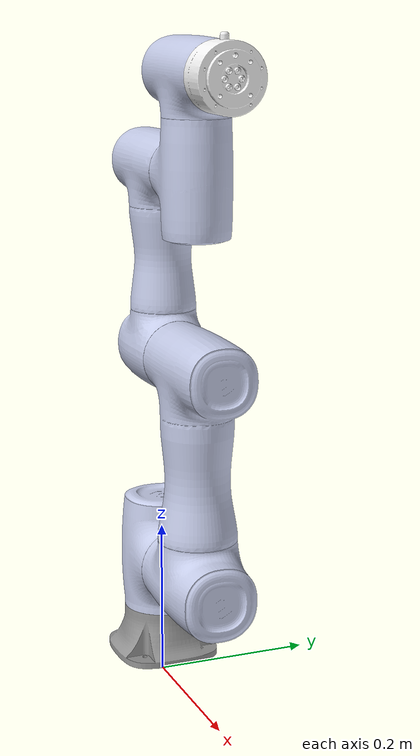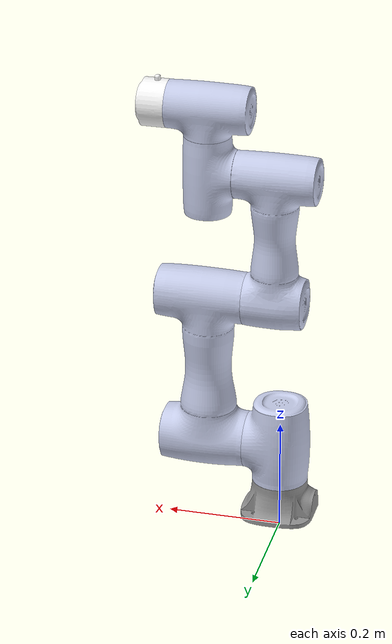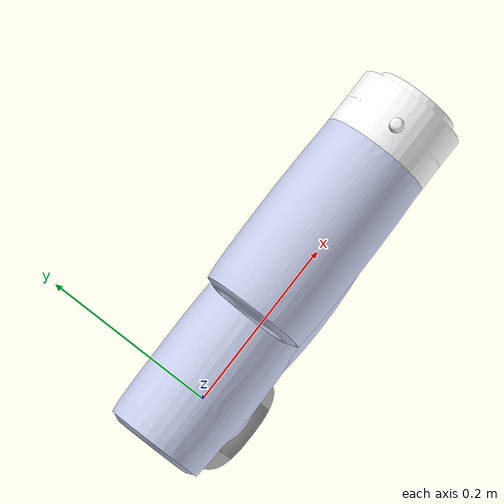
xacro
<?xml version="1.0"?>
<robot name="cr3af_robot" xmlns:xacro="http://ros.org/wiki/xacro">
  <link name="dummy_link" />
  <link
    name="base_link">
    <inertial>
      <origin
        xyz="-0.0015345 -1.0554E-05 0.028348"
        rpy="0 0 0" />
      <mass
        value="0.74" />
      <inertia
        ixx="0.00074849"
        ixy="5.9724E-08"
        ixz="-1.3251E-06"
        iyy="0.00079951"
        iyz="1.6433E-07"
        izz="0.0010879" />
    </inertial>
    <visual>
      <origin
        xyz="0 0 0"
        rpy="0 0 0" />
      <geometry>
        <mesh
          filename="file://$(find cra_description)/meshes/cr3af/base_link.STL" />
      </geometry>
      <material
        name="">
        <color
          rgba="0.59216 0.59216 0.59216 1" />
      </material>
    </visual>
    <collision>
      <origin
        xyz="0 0 0"
        rpy="0 0 0" />
      <geometry>
        <mesh
          filename="file://$(find cra_description)/meshes/cr3af/base_link.STL" />
      </geometry>
    </collision>
  </link>
    <link  name="world"/>
  <joint name="world_joint" type="fixed">
    <origin xyz="0 0 0.03" rpy="0 0 0" />
    <parent link="world" />
    <child  link="dummy_link" />
  </joint>
  <joint name="dummy_joint" type="fixed">
      <parent link="dummy_link" />
      <child  link="base_link" />
    </joint>
  <link
    name="Link1">
    <inertial>
      <origin
        xyz="0.0039443 -3.6376E-05 0.073442"
        rpy="0 0 0" />
      <mass
        value="4.45" />
      <inertia
        ixx="0.0030782"
        ixy="-1.8164E-06"
        ixz="-1.8902E-05"
        iyy="0.0031919"
        iyz="3.5177E-07"
        izz="0.001909" />
    </inertial>
    <visual>
      <origin
        xyz="0 0 0"
        rpy="0 0 0" />
      <geometry>
        <mesh
          filename="file://$(find cra_description)/meshes/cr3af/J1.STL" />
      </geometry>
      <material
        name="">
        <color
          rgba="0.79216 0.81961 0.93333 1" />
      </material>
    </visual>
    <collision>
      <origin
        xyz="0 0 0"
        rpy="0 0 0" />
      <geometry>
        <mesh
          filename="file://$(find cra_description)/meshes/cr3af/J1.STL" />
      </geometry>
    </collision>
  </link>
  <joint
    name="joint1"
    type="revolute">
    <origin
      xyz="0 0 0.065"
      rpy="0 0 0" />
    <parent
      link="base_link" />
    <child
      link="Link1" />
    <axis
      xyz="0 0 1" />
    <limit
      lower="-6.2831"
      upper="6.2831"
      effort="100"
      velocity="3.14" />
  </joint>
  <link
    name="Link2">
    <inertial>
      <origin
        xyz="0.074174 1.4072E-05 0.12923"
        rpy="0 0 0" />
      <mass
        value="8.74" />
      <inertia
        ixx="0.015046"
        ixy="-3.3667E-07"
        ixz="0.00063538"
        iyy="0.017734"
        iyz="1.7848E-06"
        izz="0.0066528" />
    </inertial>
    <visual>
      <origin
        xyz="0 0 0"
        rpy="0 0 0" />
      <geometry>
        <mesh
          filename="file://$(find cra_description)/meshes/cr3af/J2.STL" />
      </geometry>
      <material
        name="">
        <color
          rgba="0.79216 0.81961 0.93333 1" />
      </material>
    </visual>
    <collision>
      <origin
        xyz="0 0 0"
        rpy="0 0 0" />
      <geometry>
        <mesh
          filename="file://$(find cra_description)/meshes/cr3af/J2.STL" />
      </geometry>
    </collision>
  </link>
  <joint
    name="joint2"
    type="revolute">
    <origin
      xyz="0.059 0 0.0698"
      rpy="0 0 0" />
    <parent
      link="Link1" />
    <child
      link="Link2" />
    <axis
      xyz="1 0 0" />
    <limit
      lower="-6.2831"
      upper="6.2831"
      effort="100"
      velocity="3.14" />
  </joint>
  <link
    name="Link3">
    <inertial>
      <origin
        xyz="-0.0626 6.0771E-07 -0.34381"
        rpy="0 0 0" />
      <mass
        value="3.14" />
      <inertia
        ixx="0.003139"
        ixy="2.60E-07"
        ixz="-0.000151"
        iyy="0.023669"
        iyz="3.67E-08"
        izz="0.022579" />
    </inertial>
    <visual>
      <origin
        xyz="0 0 0"
        rpy="0 0 0" />
      <geometry>
        <mesh
          filename="file://$(find cra_description)/meshes/cr3af/J3.STL" />
      </geometry>
      <material
        name="">
        <color
          rgba="0.79216 0.81961 0.93333 1" />
      </material>
    </visual>
    <collision>
      <origin
        xyz="0 0 0"
        rpy="0 0 0" />
      <geometry>
        <mesh
          filename="file://$(find cra_description)/meshes/cr3af/J3.STL" />
      </geometry>
    </collision>
  </link>
  <joint
    name="joint3"
    type="revolute">
    <origin
      xyz="0.0036 0 0.27401"
      rpy="0 0 0" />
    <parent
      link="Link2" />
    <child
      link="Link3" />
    <axis
      xyz="1 0 0" />
    <limit
      lower="-2.7052"
      upper="2.7052"
      effort="100"
      velocity="3.89" />
  </joint>
  <link
    name="Link4">
    <inertial>
      <origin
        xyz="0.046127 2.7026E-08 -0.0034506"
        rpy="0 0 0" />
      <mass
        value="2.1" />
      <inertia
        ixx="0.0016946"
        ixy="-3.1265E-09"
        ixz="-9.3105E-06"
        iyy="0.0017337"
        iyz="5.4022E-09"
        izz="0.0008225" />
    </inertial>
    <visual>
      <origin
        xyz="0 0 0"
        rpy="0 0 0" />
      <geometry>
        <mesh
          filename="file://$(find cra_description)/meshes/cr3af/J4.STL" />
      </geometry>
      <material
        name="">
        <color
          rgba="0.79216 0.81961 0.93333 1" />
      </material>
    </visual>
    <collision>
      <origin
        xyz="0 0 0"
        rpy="0 0 0" />
      <geometry>
        <mesh
          filename="file://$(find cra_description)/meshes/cr3af/J4.STL" />
      </geometry>
    </collision>
  </link>
  <joint
    name="joint4"
    type="revolute">
    <origin
      xyz="0.0167 0 0.22999"
      rpy="0 0 0" />
    <parent
      link="Link3" />
    <child
      link="Link4" />
    <axis
      xyz="1 0 0" />
    <limit
      lower="-6.2831"
      upper="6.2831"
      effort="100"
      velocity="3.89" />
  </joint>
  <link
    name="Link5">
    <inertial>
      <origin
        xyz="-0.0033307 -1.2849E-07 0.046132"
        rpy="0 0 0" />
      <mass
        value="2.1" />
      <inertia
        ixx="0.0008236"
        ixy="-5.4869E-09"
        ixz="-9.0189E-06"
        iyy="0.0017414"
        iyz="3.5935E-09"
        izz="0.0017023" />
    </inertial>
    <visual>
      <origin
        xyz="0 0 0"
        rpy="0 0 0" />
      <geometry>
        <mesh
          filename="file://$(find cra_description)/meshes/cr3af/J5.STL" />
      </geometry>
      <material
        name="">
        <color
          rgba="0.79216 0.81961 0.93333 1" />
      </material>
    </visual>
    <collision>
      <origin
        xyz="0 0 0"
        rpy="0 0 0" />
      <geometry>
        <mesh
          filename="file://$(find cra_description)/meshes/cr3af/J5.STL" />
      </geometry>
    </collision>
  </link>
  <joint
    name="joint5"
    type="revolute">
    <origin
      xyz="0.049 0 0.067"
      rpy="0 0 0" />
    <parent
      link="Link4" />
    <child
      link="Link5" />
    <axis
      xyz="0 0 1" />
    <limit
      lower="-6.2831"
      upper="6.2831"
      effort="100"
      velocity="3.89" />
  </joint>
  <link
    name="Link6">
    <inertial>
      <origin
        xyz="0.022777 -1.019E-08 8.8138E-05"
        rpy="0 0 0" />
      <mass
        value="0.29" />
      <inertia
        ixx="0.00019903"
        ixy="-1.1106E-12"
        ixz="-2.2857E-07"
        iyy="0.0001425"
        iyz="-1.2175E-10"
        izz="0.00014123" />
    </inertial>
    <visual>
      <origin
        xyz="0 0 0"
        rpy="0 0 0" />
      <geometry>
        <mesh
          filename="file://$(find cra_description)/meshes/cr3af/J6.STL" />
      </geometry>
      <material
        name="">
        <color
          rgba="1 1 1 1" />
      </material>
    </visual>
    <collision>
      <origin
        xyz="0 0 0"
        rpy="0 0 0" />
      <geometry>
        <mesh
          filename="file://$(find cra_description)/meshes/cr3af/J6.STL" />
      </geometry>
    </collision>
  </link>
  <joint
    name="joint6"
    type="revolute">
    <origin
      xyz="0.0667 0 0.049"
      rpy="0 0 0" />
    <parent
      link="Link5" />
    <child
      link="Link6" />
    <axis
      xyz="1 0 0" />
    <limit
      lower="-6.2831"
      upper="6.2831"
      effort="100"
      velocity="3.89" />
  </joint>
  <link name="tool0"/>
  <joint name="tool_joint" type="fixed">
    <origin xyz="0 0 0" rpy="4.7124 0 3.14159" />
    <parent link="Link6" />
    <child link="tool0" />
  </joint>
  <gazebo reference="base_link">
        <gravity>false</gravity>
        <selfCollide>true</selfCollide>
    </gazebo>
    <gazebo reference="Link1">
        <gravity>false</gravity>
        <selfCollide>true</selfCollide>
    </gazebo>
    <gazebo reference="Link2">
        <gravity>false</gravity>
        <selfCollide>true</selfCollide>
    </gazebo>
    <gazebo reference="Link3">
        <gravity>false</gravity>
        <selfCollide>true</selfCollide>
    </gazebo>
    <gazebo reference="Link4">
        <gravity>false</gravity>
        <selfCollide>true</selfCollide>
    </gazebo>
    <gazebo reference="Link5">
        <gravity>false</gravity>
        <selfCollide>true</selfCollide>
    </gazebo>
    <gazebo reference="Link6">
        <gravity>false</gravity>
        <selfCollide>true</selfCollide>
    </gazebo>
    <!-- 在运行demo.launch.py时，需要注释这个ros2_control节点，因为它使用了xxx.ros2_control.xacro来生成了ros2_control节点-->
    <ros2_control name="GazeboSystem" type="system">
        <hardware>
            <plugin>gazebo_ros2_control/GazeboSystem</plugin>
        </hardware>
        <joint name="joint1">
            <command_interface name="position">
                <param name="min">-1</param>
                <param name="max">1</param>
            </command_interface>
            <state_interface name="position">
                <param name="initial_value">0.0</param>
            </state_interface>
            <state_interface name="velocity"/>
        </joint>
        <joint name="joint2">
            <command_interface name="position">
                <param name="min">-1</param>
                <param name="max">1</param>
            </command_interface>
            <state_interface name="position">
                <param name="initial_value">0.0</param>
            </state_interface>
            <state_interface name="velocity"/>
        </joint>
        <joint name="joint3">
            <command_interface name="position">
                <param name="min">-1</param>
                <param name="max">1</param>
            </command_interface>
            <state_interface name="position">
                <param name="initial_value">0.0</param>
            </state_interface>
            <state_interface name="velocity"/>
        </joint>
        <joint name="joint4">
            <command_interface name="position">
                <param name="min">-1</param>
                <param name="max">1</param>
            </command_interface>
            <state_interface name="position">
                <param name="initial_value">0.0</param>
            </state_interface>
            <state_interface name="velocity"/>
        </joint>
        <joint name="joint5">
            <command_interface name="position">
                <param name="min">-1</param>
                <param name="max">1</param>
            </command_interface>
            <state_interface name="position">
                <param name="initial_value">0.0</param>
            </state_interface>
            <state_interface name="velocity"/>
        </joint>
        <joint name="joint6">
            <command_interface name="position">
                <param name="min">-1</param>
                <param name="max">1</param>
            </command_interface>
            <state_interface name="position">
                <param name="initial_value">0.0</param>
            </state_interface>
            <state_interface name="velocity"/>
        </joint>
    </ros2_control>

    <gazebo>
        <plugin filename="libgazebo_ros2_control.so" name="gazebo_ros2_control">
            <parameters>$(find cr3af_moveit)/config/ros2_controllers.yaml</parameters>
            <robot_param_node>robot_state_publisher</robot_param_node>
        </plugin>
    </gazebo>
</robot>
